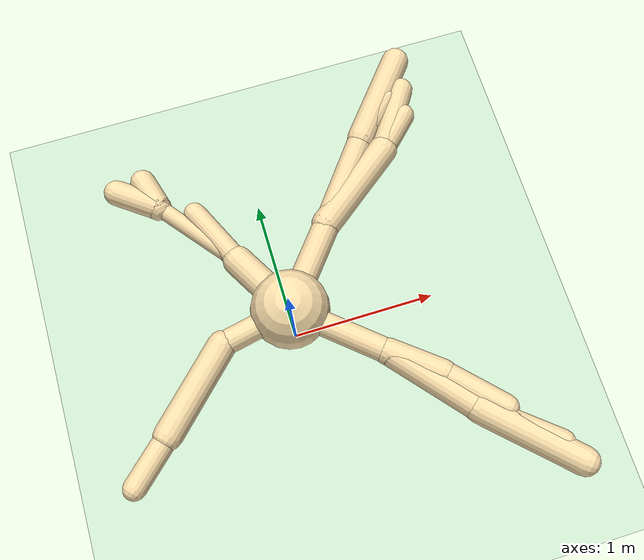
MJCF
<mujoco model="ant_competevo">
  <compiler angle="degree" coordinate="local" inertiafromgeom="true"/>
  <option integrator="RK4" timestep="0.01"/>
  <default>
    <joint armature="1" damping="1" limited="true"/>
    <geom conaffinity="0" condim="3" density="5.0" friction="1 0.5 0.5" margin="0.01" rgba="0.98 0.87 0.67 1" material="geom"/>
  </default>
  <visual>
    <headlight ambient=".1 .1 .1" diffuse=".6 .6 .6" specular="0.3 0.3 0.3"/>
    <map znear=".01"/>
    <quality shadowsize="16384"/>
  </visual>
  <worldbody>
    <light cutoff="100" diffuse="1 1 1" dir="-0 0 -1.3" directional="true" exponent="1" pos="0 0 1.3" specular=".1 .1 .1"/>
    <geom conaffinity="1" condim="3" name="floor" pos="0 0 0" rgba="0.8 0.9 0.8 1" size="200 200 .125" type="plane" material="grid_new"/>
    <body name="0" pos="0 0 0.75" euler="0 0 0">
      <camera name="track" mode="trackcom" pos="0 -3 0.3" xyaxes="1 0 0 0 0 1"/>
      <geom pos="0 0 0" size="0.25" type="sphere"/>
      <joint armature="0" damping="0" limited="false" margin="0.01" name="0_joint" pos="0 0 0" range="-30 30" type="free"/>
      <body name="1" pos="0 0 0">
        <geom fromto="-0.000006 -0.000007 0 0.38956 0.484412 0" size="0.086837" type="capsule"/>
        <body name="11" pos="0.38956 0.484412 0">
          <joint axis="0 0 1" name="11_joint" pos="0 0 0" range="-30 30" type="hinge"/>
          <geom fromto="-0.002555 -0.003348 0 0.381661 0.5 0" size="0.082596" type="capsule"/>
          <body name="111" pos="0.381661 0.5 0">
            <geom fromto="-0.003586 -0.004403 0 0.390012 0.478819 0" size="0.091486" type="capsule"/>
            <joint axis="-0.707107 0.707107 0" name="111_joint" pos="0 0 0" range="30 70" type="hinge"/>
          </body>
          <body name="211" pos="0.381661 0.5 0">
            <joint axis="0 0 1" name="211_joint" pos="0 0 0" range="-30 30" type="hinge"/>
            <geom fromto="-0.000021 -0.000021 0 0.235357 0.226315 0" size="0.081794" type="capsule"/>
          </body>
        </body>
        <body name="21" pos="0.38956 0.484412 0">
          <geom fromto="-0.01276 -0.009829 0 0.492402 0.379314 0" size="0.095032" type="capsule"/>
          <body name="121" pos="0.492402 0.379314 0">
            <geom fromto="-0 -0 0 0.200223 0.196181 0" size="0.079161" type="capsule"/>
          </body>
          <body name="221" pos="0.492402 0.379314 0">
            <geom fromto="-0.000453 -0.000695 0 0.248393 0.380822 0" size="0.080708" type="capsule"/>
          </body>
        </body>
      </body>
      <body name="2" pos="0 0 0">
        <geom fromto="0.000049 -0.000086 0 -0.228894 0.401419 0" size="0.095604" type="capsule"/>
        <body name="12" pos="-0.228894 0.401419 0">
          <joint axis="0 0 1" name="12_joint" pos="0 0 0" range="-30 30" type="hinge"/>
          <geom fromto="0.00119 -0.002541 0 -0.180757 0.385875 0" size="0.072216" type="capsule"/>
        </body>
        <body name="22" pos="-0.228894 0.401419 0">
          <geom fromto="0.000035 -0.000044 0 -0.394675 0.498481 0" size="0.054349" type="capsule"/>
          <body name="122" pos="-0.394675 0.498481 0">
            <geom fromto="0.000053 -0.000039 0 -0.233946 0.174529 0" size="0.082349" type="capsule"/>
          </body>
          <body name="222" pos="-0.394675 0.498481 0">
            <geom fromto="0.002075 -0.007357 0 -0.055778 0.197731 0" size="0.081304" type="capsule"/>
          </body>
        </body>
      </body>
      <body name="3" pos="0 0 0">
        <geom fromto="0.000918 0.000189 0 -0.461643 -0.094992 0" size="0.078253" type="capsule"/>
        <body name="13" pos="-0.461643 -0.094992 0">
          <joint axis="0 0 1" name="13_joint" pos="0 0 0" range="-30 30" type="hinge"/>
          <geom fromto="0.000065 0.000064 0 -0.445433 -0.438422 0" size="0.091313" type="capsule"/>
          <body name="113" pos="-0.445433 -0.438422 0">
            <joint axis="0 0 1" name="113_joint" pos="0 0 0" range="-30 30" type="hinge"/>
            <geom fromto="0.000004 0.000004 0 -0.255723 -0.237404 0" size="0.07327" type="capsule"/>
          </body>
        </body>
      </body>
      <body name="4" pos="0 0 0">
        <geom fromto="-0.005984 0.005167 0 0.499557 -0.431351 0" size="0.078979" type="capsule"/>
        <body name="14" pos="0.499557 -0.431351 0">
          <joint axis="0 0 1" name="14_joint" pos="0 0 0" range="-30 30" type="hinge"/>
          <geom fromto="-0.000199 0.000235 0 0.412498 -0.486345 0" size="0.083687" type="capsule"/>
          <body name="114" pos="0.412498 -0.486345 0">
            <geom fromto="-0.00003 0.000029 0 0.49206 -0.476417 0" size="0.091715" type="capsule"/>
            <joint axis="0.707107 0.707107 0" name="114_joint" pos="0 0 0" range="30 70" type="hinge"/>
          </body>
          <body name="214" pos="0.412498 -0.486345 0">
            <joint axis="0 0 1" name="214_joint" pos="0 0 0" range="-30 30" type="hinge"/>
            <geom fromto="-0.001077 0.000891 0 0.404671 -0.334836 0" size="0.080348" type="capsule"/>
          </body>
        </body>
        <body name="24" pos="0.499557 -0.431351 0">
          <geom fromto="-0.000313 0.000252 0 0.277237 -0.223219 0" size="0.086544" type="capsule"/>
          <body name="124" pos="0.277237 -0.223219 0">
            <geom fromto="-0.002986 0.00311 0 0.294286 -0.306464 0" size="0.079819" type="capsule"/>
          </body>
        </body>
      </body>
    </body>
  </worldbody>
  <actuator>
    <motor ctrllimited="true" ctrlrange="-1.0 1.0" joint="11_joint" gear="166.97205" name="11_joint"/>
    <motor ctrllimited="true" ctrlrange="-1.0 1.0" joint="12_joint" gear="277.24275" name="12_joint"/>
    <motor ctrllimited="true" ctrlrange="-1.0 1.0" joint="13_joint" gear="168.291526" name="13_joint"/>
    <motor ctrllimited="true" ctrlrange="-1.0 1.0" joint="14_joint" gear="64.643933" name="14_joint"/>
    <motor ctrllimited="true" ctrlrange="-1.0 1.0" joint="111_joint" gear="20.604374" name="111_joint"/>
    <motor ctrllimited="true" ctrlrange="-1.0 1.0" joint="114_joint" gear="111.716582" name="114_joint"/>
    <motor ctrllimited="true" ctrlrange="-1.0 1.0" joint="211_joint" gear="148.143633" name="211_joint"/>
    <motor ctrllimited="true" ctrlrange="-1.0 1.0" joint="214_joint" gear="221.249078" name="214_joint"/>
    <motor ctrllimited="true" ctrlrange="-1.0 1.0" joint="113_joint" gear="93.47962" name="113_joint"/>
  </actuator>
  <asset>
    <texture type="skybox" builtin="gradient" rgb1=".4 .5 .6" rgb2="0 0 0" width="100" height="100"/>
    <texture builtin="flat" height="1278" mark="cross" markrgb="1 1 1" name="texgeom" random="0.01" rgb1="0.8 0.6 0.4" rgb2="0.8 0.6 0.4" type="cube" width="127"/>
    <texture builtin="checker" height="100" name="texplane" rgb1="0 0 0" rgb2="0.8 0.8 0.8" type="2d" width="100"/>
    <material name="MatPlane" reflectance="0.5" shininess="1" specular="1" texrepeat="60 60" texture="texplane"/>
    <material name="geom" texture="texgeom" texuniform="true"/>
    <texture name="grid_new" type="2d" builtin="checker" rgb1=".1 .3 .2" rgb2=".2 .4 .3" width="1000" height="1000" mark="none" markrgb=".8 .6 .4"/>
    <material name="grid_new" texture="grid_new" texrepeat="0.2 0.2" texuniform="true" reflectance=".2"/>
  </asset>
</mujoco>
